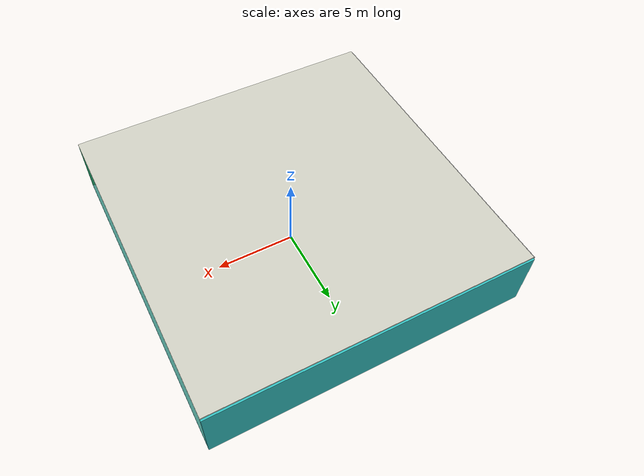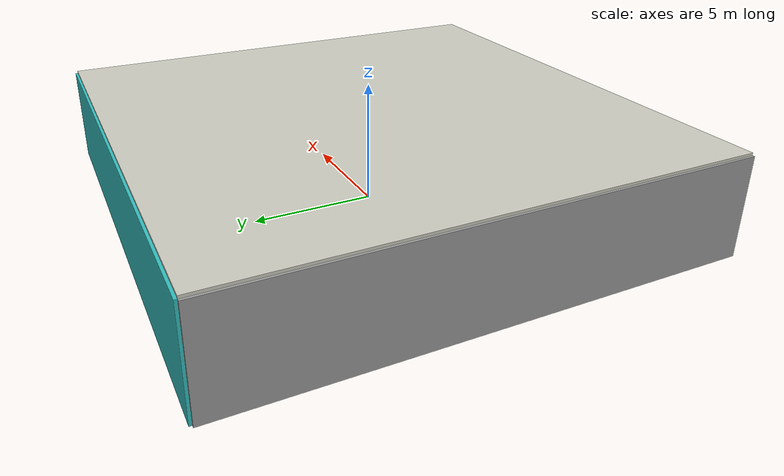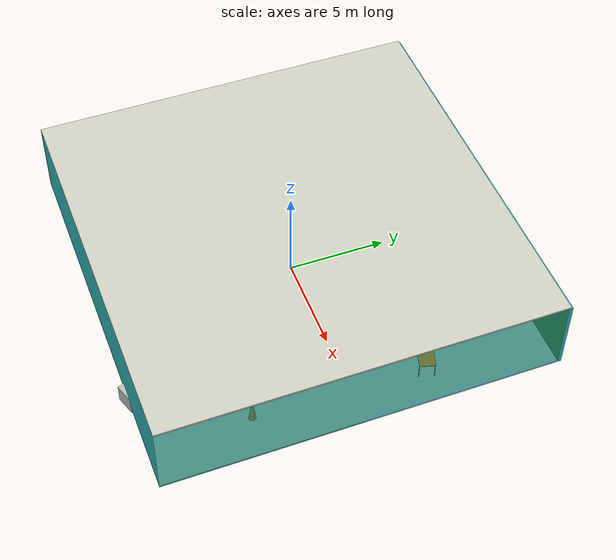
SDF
<sdf version="1.4">
 <world name="default">
  <physics type="ode">
   <max_step_size>0.001</max_step_size>
   <real_time_factor>1</real_time_factor>
   <real_time_update_rate>1000</real_time_update_rate>
   <gravity>0 0 -9.8</gravity>
  </physics>
  <scene><ambient>0.4 0.4 0.4 1</ambient><background>0.7 0.7 0.7 1</background><shadows>1</shadows></scene>
  <model name="Surrounding">
   <static>1</static>
   <link name="Ceiling">
    <collision name="Ceiling_Collision"><geometry><box><size>20 20 0.1</size></box></geometry></collision>
    <visual name="Ceiling_Visual">
     <geometry><box><size>20 20 0.1</size></box></geometry>
     <material>
      <script><uri>file://media/materials/scripts/gazebo.material</uri><name>Gazebo/PaintedWall</name></script>
     </material>
    </visual>
    <pose>0 0 4.05 0 0 0</pose>
   </link>
   <link name="Wall_South">
    <collision name="Wall_South_Collision">
     <geometry><box><size>20 0 4</size></box></geometry>
     <pose>0 0 2 0 -0 0</pose>
    </collision>
    <visual name="Wall_South_Visual">
     <pose>0 0 2 0 -0 0</pose>
     <geometry><box><size>20 0 4</size></box></geometry>
     <material>
      <script><uri>file://media/materials/scripts/gazebo.material</uri><name>Gazebo/TurquoiseGlow</name></script>
     </material>
    </visual>
    <velocity_decay><linear>0</linear><angular>0</angular></velocity_decay>
    <pose>0 -10 0 0 -0 0</pose>
   </link>
   <link name="Wall_East">
    <collision name="Wall_21_Collision">
     <geometry><box><size>20 0 4</size></box></geometry>
     <pose>0 0 2 0 -0 0</pose>
    </collision>
    <visual name="Wall_21_Visual">
     <pose>0 0 2 0 -0 0</pose>
     <geometry><box><size>20 0 4</size></box></geometry>
     <material>
      <script><uri>file://media/materials/scripts/gazebo.material</uri><name>Gazebo/GreenTransparent</name></script>
     </material>
    </visual>
    <velocity_decay><linear>0</linear><angular>0</angular></velocity_decay>
    <pose>10 0 0 0 -0 1.5708</pose>
   </link>
   <link name="Wall_North">
    <collision name="Wall_22_Collision">
     <geometry><box><size>20 0.2 4</size></box></geometry>
     <pose>0 0 2 0 -0 0</pose>
    </collision>
    <visual name="Wall_22_Visual">
     <pose>0 0 2 0 -0 0</pose>
     <geometry><box><size>20 0.2 4</size></box></geometry>
     <material>
      <script>
       <uri>file://media/materials/scripts/gazebo.material</uri>
       <name>Gazebo/TurquoiseGlowOutline</name>
      </script>
     </material>
    </visual>
    <velocity_decay><linear>0</linear><angular>0</angular></velocity_decay>
    <pose>0 10 0 0 -0 0</pose>
   </link>
   <link name="Wall_West">
    <collision name="Wall_23_Collision">
     <geometry><box><size>20 0.2 4</size></box></geometry>
     <pose>0 0 2 0 -0 0</pose>
    </collision>
    <visual name="Wall_23_Visual">
     <pose>0 0 2 0 -0 0</pose>
     <geometry><box><size>20 0.2 4</size></box></geometry>
     <material>
      <script><uri>file://media/materials/scripts/gazebo.material</uri><name>Gazebo/GreyGradientSky</name></script>
     </material>
    </visual>
    <velocity_decay><linear>0</linear><angular>0</angular></velocity_decay>
    <pose>-10 0 0 0 0 -1.5708</pose>
   </link>
   <link name="Ground_link">
    <collision name="collision">
     <pose>0 0 .05 0 -0 0</pose>
     <geometry><box><size>20 20 0.1</size></box></geometry>
    </collision>
    <visual name="visual">
     <pose>0 0 .05 0 -0 0</pose>
     <geometry><box><size>20 20 0.1</size></box></geometry>
     <material>
      <script><uri>file://media/materials/scripts/gazebo.material</uri><name>Gazebo/SkyBlue</name></script>
     </material>
    </visual>
   </link>
   <static>1</static>
  </model>
  <spherical_coordinates>
   <surface_model>EARTH_WGS84</surface_model>
   <latitude_deg>0</latitude_deg>
   <longitude_deg>0</longitude_deg>
   <elevation>0</elevation>
   <heading_deg>0</heading_deg>
  </spherical_coordinates>
  <light name="lightball_0" type="diffuse">
   <diffuse>0.8 0.8 0.8 1</diffuse>
   <specular>0.2 0.2 0.2 1</specular>
   <attenuation>
    <range>100</range>
    <constant>0.7</constant>
    <linear>0.01</linear>
    <quadratic>0.001</quadratic>
   </attenuation>
   <direction>-0.5 0.1 -0.9</direction>
   <pose>-3.21922695216 -3.38068306053 1.20532772273 0 0 0</pose>
  </light>
  <light name="lightball_1" type="diffuse">
   <diffuse>0.8 0.8 0.8 1</diffuse>
   <specular>0.2 0.2 0.2 1</specular>
   <attenuation>
    <range>100</range>
    <constant>0.7</constant>
    <linear>0.01</linear>
    <quadratic>0.001</quadratic>
   </attenuation>
   <direction>-0.5 0.1 -0.9</direction>
   <pose>3.67929123836 -2.35520717466 3.76682098048 0 0 0</pose>
  </light>
  <light name="lightball_2" type="diffuse">
   <diffuse>0.8 0.8 0.8 1</diffuse>
   <specular>0.2 0.2 0.2 1</specular>
   <attenuation>
    <range>100</range>
    <constant>0.7</constant>
    <linear>0.01</linear>
    <quadratic>0.001</quadratic>
   </attenuation>
   <direction>-0.5 0.1 -0.9</direction>
   <pose>7.59942302169 -0.74634365947 1.28814821156 0 0 0</pose>
  </light>
  <light name="lightball_3" type="diffuse">
   <diffuse>0.8 0.8 0.8 1</diffuse>
   <specular>0.2 0.2 0.2 1</specular>
   <attenuation>
    <range>100</range>
    <constant>0.7</constant>
    <linear>0.01</linear>
    <quadratic>0.001</quadratic>
   </attenuation>
   <direction>-0.5 0.1 -0.9</direction>
   <pose>4.0640262408 -0.836866162956 1.98774905948 0 0 0</pose>
  </light>
  <light name="lightball_4" type="diffuse">
   <diffuse>0.8 0.8 0.8 1</diffuse>
   <specular>0.2 0.2 0.2 1</specular>
   <attenuation>
    <range>100</range>
    <constant>0.7</constant>
    <linear>0.01</linear>
    <quadratic>0.001</quadratic>
   </attenuation>
   <direction>-0.5 0.1 -0.9</direction>
   <pose>7.06614851954 -4.61097353879 2.83371871078 0 0 0</pose>
  </light>
  <light name="lightball_5" type="diffuse">
   <diffuse>0.8 0.8 0.8 1</diffuse>
   <specular>0.2 0.2 0.2 1</specular>
   <attenuation>
    <range>100</range>
    <constant>0.7</constant>
    <linear>0.01</linear>
    <quadratic>0.001</quadratic>
   </attenuation>
   <direction>-0.5 0.1 -0.9</direction>
   <pose>-4.59285752816 3.84065759432 2.61757863745 0 0 0</pose>
  </light>
  <light name="lightball_6" type="diffuse">
   <diffuse>0.8 0.8 0.8 1</diffuse>
   <specular>0.2 0.2 0.2 1</specular>
   <attenuation>
    <range>100</range>
    <constant>0.7</constant>
    <linear>0.01</linear>
    <quadratic>0.001</quadratic>
   </attenuation>
   <direction>-0.5 0.1 -0.9</direction>
   <pose>7.88275469197 1.03905813829 2.42833421169 0 0 0</pose>
  </light>
  <light name="lightball_7" type="diffuse">
   <diffuse>0.8 0.8 0.8 1</diffuse>
   <specular>0.2 0.2 0.2 1</specular>
   <attenuation>
    <range>100</range>
    <constant>0.7</constant>
    <linear>0.01</linear>
    <quadratic>0.001</quadratic>
   </attenuation>
   <direction>-0.5 0.1 -0.9</direction>
   <pose>-1.8584451953 6.72809112662 3.04926587467 0 0 0</pose>
  </light>
  <include><uri>model://cabinet</uri><pose>-7.56583763491 -7.92916027184 0 0 0 0.0212445479712</pose></include>
  <include><uri>model://cabinet</uri><pose>-8.21149736166 1.21838846622 0 0 0 2.55080134009</pose></include>
  <include>
   <uri>model://construction_cone</uri>
   <pose>-4.84607492447 -7.25291472839 0 0 0 2.9489982659</pose>
  </include>
  <include>
   <uri>model://robocup_3Dsim_goal</uri>
   <pose>-1.49792587587 2.18596198782 0 0 0 3.05549997426</pose>
  </include>
  <include><uri>model://cabinet</uri><pose>1.53472256749 6.70765009617 0 0 0 0.199284883542</pose></include>
  <include>
   <uri>model://textured_shapes</uri>
   <pose>4.23338178689 -8.26328722409 0 0 0 0.338636546433</pose>
  </include>
  <include>
   <uri>model://robocup_3Dsim_goal</uri>
   <pose>3.99288359136 -3.98540521404 0 0 0 0.144025757753</pose>
  </include>
  <include>
   <uri>model://construction_cone</uri>
   <pose>7.99259742448 -4.89319669763 0 0 0 2.36315226509</pose>
  </include>
  <include><uri>model://table</uri><pose>7.99831026023 3.80990279192 0 0 0 2.8668776171</pose></include>
 </world>
</sdf>

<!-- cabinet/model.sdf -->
<sdf version="1.5">
  <model name="cabinet">
    <static>true</static>
    <link name="cabinet_bottom_plate">
      <inertial>
        <pose>0 0 -1 0 0 0</pose>
        <inertia>
          <ixx>2.050000</ixx>
          <ixy>0</ixy>
          <ixz>0</ixz>
          <iyy>2.050000</iyy>
          <iyz>0</iyz>
          <izz>2.050000</izz>
        </inertia>
        <mass>25.000000</mass>
      </inertial>
      <collision name="cabinet_bottom_plate_geom">
        <pose>0 0 0.010000 0 0 0</pose>
        <geometry>
          <box>
            <size>0.450000 0.450000 0.020000</size>
          </box>
        </geometry>
      </collision>
      <visual name="cabinet_bottom_plate_geom_visual">
        <pose>0 0 0.010000 0 0 0</pose>
        <geometry>
          <box>
            <size>0.450000 0.450000 0.020000</size>
          </box>
        </geometry>
        <material>
          <script>
            <uri>model://media/materials/scripts/gazebo.material</uri>
            <name>Gazebo/Wood</name>
          </script>
        </material>
      </visual>
      <collision name="cabinet_bottom_plate_geom_cabinet_back_plate">
        <pose>0.235000 0 0.510000 0 0 0</pose>
        <geometry>
          <box>
            <size>0.020000 0.450000 1.020000</size>
          </box>
        </geometry>
      </collision>
      <visual name="cabinet_bottom_plate_geom_cabinet_back_plate_visual">
        <pose>0.235000 0 0.510000 0 0 0</pose>
        <geometry>
          <box>
            <size>0.020000 0.450000 1.020000</size>
          </box>
        </geometry>
        <material>
          <script>
            <uri>model://media/materials/scripts/gazebo.material</uri>
            <name>Gazebo/Wood</name>
          </script>
        </material>
      </visual>
      <collision name="cabinet_bottom_plate_geom_cabinet_left_plate">
        <pose>0 0.235000 0.510000 0 0 0</pose>
        <geometry>
          <box>
            <size>0.450000 0.020000 1.020000</size>
          </box>
        </geometry>
      </collision>
      <visual name="cabinet_bottom_plate_geom_cabinet_left_plate_visual">
        <pose>0 0.235000 0.510000 0 0 0</pose>
        <geometry>
          <box>
            <size>0.450000 0.020000 1.020000</size>
          </box>
        </geometry>
        <material>
          <script>
            <uri>model://media/materials/scripts/gazebo.material</uri>
            <name>Gazebo/Wood</name>
          </script>
        </material>
      </visual>
      <collision name="cabinet_bottom_plate_geom_cabinet_middle_plate">
        <pose>0 0 0.510000 0 0 0</pose>
        <geometry>
          <box>
            <size>0.450000 0.450000 0.020000</size>
          </box>
        </geometry>
      </collision>
      <visual name="cabinet_bottom_plate_geom_cabinet_middle_plate_visual">
        <pose>0 0 0.510000 0 0 0</pose>
        <geometry>
          <box>
            <size>0.450000 0.450000 0.020000</size>
          </box>
        </geometry>
        <material>
          <script>
            <uri>model://media/materials/scripts/gazebo.material</uri>
            <name>Gazebo/Wood</name>
          </script>
        </material>
      </visual>
      <collision name="cabinet_bottom_plate_geom_cabinet_right_plate">
        <pose>0 -0.235000 0.510000 0 0 0</pose>
        <geometry>
          <box>
            <size>0.450000 0.020000 1.020000</size>
          </box>
        </geometry>
      </collision>
      <visual name="cabinet_bottom_plate_geom_cabinet_right_plate_visual">
        <pose>0 -0.235000 0.510000 0 0 0</pose>
        <geometry>
          <box>
            <size>0.450000 0.020000 1.020000</size>
          </box>
        </geometry>
        <material>
          <script>
            <uri>model://media/materials/scripts/gazebo.material</uri>
            <name>Gazebo/Wood</name>
          </script>
        </material>
      </visual>
      <collision name="cabinet_bottom_plate_geom_cabinet_top_plate">
        <pose>0 0 1.010000 0 0 0</pose>
        <geometry>
          <box>
            <size>0.450000 0.450000 0.020000</size>
          </box>
        </geometry>
      </collision>
      <visual name="cabinet_bottom_plate_geom_cabinet_top_plate_visual">
        <pose>0 0 1.010000 0 0 0</pose>
        <geometry>
          <box>
            <size>0.450000 0.450000 0.020000</size>
          </box>
        </geometry>
        <material>
          <script>
            <uri>model://media/materials/scripts/gazebo.material</uri>
            <name>Gazebo/Wood</name>
          </script>
        </material>
      </visual>
    </link>
  </model>
</sdf>

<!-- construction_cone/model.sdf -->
<sdf version="1.5">
  <model name="Construction Cone">
    <link name="link">
      <collision name="collision">
        <geometry>
          <mesh>
            <scale>10 10 10</scale>
            <uri>file://isr-testbed/construction_cone/meshes/construction_cone.dae</uri>
          </mesh>
        </geometry>
      </collision>
      <visual name="visual">
        <geometry>
          <mesh>
            <scale>10 10 10</scale>
            <uri>file://isr-testbed/construction_cone/meshes/construction_cone.dae</uri>
          </mesh>
        </geometry>
      </visual>
    </link>
  </model>
</sdf>

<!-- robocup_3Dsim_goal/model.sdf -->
<sdf version="1.5">
  <model name="robocup_3d_goal">
    <static>true</static>
    <link name="left_post">
      <pose>0 1.05 0.45 0 0 0</pose>
      <collision name="collision">
        <geometry>
          <cylinder>
            <radius>0.05</radius>
            <length>0.9</length>
          </cylinder>
        </geometry>
      </collision>
      <visual name="visual">
        <geometry>
          <cylinder>
            <radius>0.05</radius>
            <length>0.9</length>
          </cylinder>
        </geometry>
        <material>
          <script>
            <uri>file://media/materials/scripts/gazebo.material</uri>
            <name>Gazebo/ZincYellow</name>
          </script>
        </material>
      </visual>
    </link>
    <link name="left_support_horiz_lower">
      <pose>0.30 1.05 0.01 0 0 0</pose>
      <collision name="collision">
        <geometry>
          <box>
            <size>0.50 0.02 0.02</size>
          </box>
        </geometry>
      </collision>
      <visual name="visual">
        <geometry>
          <box>
            <size>0.50 0.02 0.02</size>
          </box>
        </geometry>
        <material>
          <script>
            <uri>file://media/materials/scripts/gazebo.material</uri>
            <name>Gazebo/White</name>
          </script>
        </material>
      </visual>
    </link>
    <link name="left_support_horiz_upper">
      <pose>0.30 1.05 0.79 0 0 0</pose>
      <collision name="collision">
        <geometry>
          <box>
            <size>0.50 0.02 0.02</size>
          </box>
        </geometry>
      </collision>
      <visual name="visual">
        <geometry>
          <box>
            <size>0.50 0.02 0.02</size>
          </box>
        </geometry>
        <material>
          <script>
            <uri>file://media/materials/scripts/gazebo.material</uri>
            <name>Gazebo/White</name>
          </script>
        </material>
      </visual>
    </link>
    <link name="left_support_vertical">
      <pose>0.56 1.05 0.4 0 1.5708 0</pose>
      <collision name="collision">
        <geometry>
          <box>
            <size>0.80 0.02 0.02</size>
          </box>
        </geometry>
      </collision>
      <visual name="visual">
        <geometry>
          <box>
            <size>0.80 0.02 0.02</size>
          </box>
        </geometry>
        <material>
          <script>
            <uri>file://media/materials/scripts/gazebo.material</uri>
            <name>Gazebo/White</name>
          </script>
        </material>
      </visual>
    </link>
    <link name="right_support_horiz_lower">
      <pose>0.30 -1.05 0.01 0 0 0</pose>
      <collision name="collision">
        <geometry>
          <box>
            <size>0.50 0.02 0.02</size>
          </box>
        </geometry>
      </collision>
      <visual name="visual">
        <geometry>
          <box>
            <size>0.50 0.02 0.02</size>
          </box>
        </geometry>
        <material>
          <script>
            <uri>file://media/materials/scripts/gazebo.material</uri>
            <name>Gazebo/White</name>
          </script>
        </material>
      </visual>
    </link>
    <link name="right_support_horiz_upper">
      <pose>0.30 -1.05 0.79 0 0 0</pose>
      <collision name="collision">
        <geometry>
          <box>
            <size>0.50 0.02 0.02</size>
          </box>
        </geometry>
      </collision>
      <visual name="visual">
        <geometry>
          <box>
            <size>0.50 0.02 0.02</size>
          </box>
        </geometry>
        <material>
          <script>
            <uri>file://media/materials/scripts/gazebo.material</uri>
            <name>Gazebo/White</name>
          </script>
        </material>
      </visual>
    </link>
    <link name="right_support_vertical">
      <pose>0.56 -1.05 0.4 0 1.5708 0</pose>
      <collision name="collision">
        <geometry>
          <box>
            <size>0.80 0.02 0.02</size>
          </box>
        </geometry>
      </collision>
      <visual name="visual">
        <geometry>
          <box>
            <size>0.80 0.02 0.02</size>
          </box>
        </geometry>
        <material>
          <script>
            <uri>file://media/materials/scripts/gazebo.material</uri>
            <name>Gazebo/White</name>
          </script>
        </material>
      </visual>
    </link>
    <link name="center_support_horiz_lower">
      <pose>0.56 0 0.01 0 1.5708 0</pose>
      <collision name="collision">
        <geometry>
          <box>
            <size>0.02 2.08 0.02</size>
          </box>
        </geometry>
      </collision>
      <visual name="visual">
        <geometry>
          <box>
            <size>0.02 2.08 0.02</size>
          </box>
        </geometry>
        <material>
          <script>
            <uri>file://media/materials/scripts/gazebo.material</uri>
            <name>Gazebo/White</name>
          </script>
        </material>
      </visual>
    </link>
    <link name="center_support_horiz_upper">
      <pose>0.56 0 0.79 0 1.5708 0</pose>
      <collision name="collision">
        <geometry>
          <box>
            <size>0.02 2.08 0.02</size>
          </box>
        </geometry>
      </collision>
      <visual name="visual">
        <geometry>
          <box>
            <size>0.02 2.08 0.02</size>
          </box>
        </geometry>
        <material>
          <script>
            <uri>file://media/materials/scripts/gazebo.material</uri>
            <name>Gazebo/White</name>
          </script>
        </material>
      </visual>
    </link>
    <link name="right_post">
      <pose>0 -1.05 0.45 0 0 0</pose>
      <collision name="collision">
        <geometry>
          <cylinder>
            <radius>0.05</radius>
            <length>0.9</length>
          </cylinder>
        </geometry>
      </collision>
      <visual name="visual">
        <geometry>
          <cylinder>
            <radius>0.05</radius>
            <length>0.9</length>
          </cylinder>
        </geometry>
        <material>
          <script>
            <uri>file://media/materials/scripts/gazebo.material</uri>
            <name>Gazebo/ZincYellow</name>
          </script>
        </material>
      </visual>
    </link>
    <link name="crossbar">
      <pose>0 0 0.85 1.57 1.57 0</pose>
      <collision name="collision">
        <geometry>
          <cylinder>
            <radius>0.05</radius>
            <length>2.0</length>
          </cylinder>
        </geometry>
      </collision>
      <visual name="visual">
        <geometry>
          <cylinder>
            <radius>0.05</radius>
            <length>2.0</length>
          </cylinder>
        </geometry>
        <material>
          <script>
            <uri>file://media/materials/scripts/gazebo.material</uri>
            <name>Gazebo/ZincYellow</name>
          </script>
        </material>
      </visual>
    </link>
    <link name="center_net">
      <pose>0.56 0 0.40 0 0 0</pose>
      <collision name="collision">
        <geometry>
          <box>
            <size>0.01 2.1 0.80</size>
          </box>
        </geometry>
      </collision>
      <visual name="visual">
        <geometry>
          <box>
            <size>0.01 2.1 0.80</size>
          </box>
        </geometry>
        <material>
          <script>
            <uri>model://../model_source/models/robocup09_spl_field/materials/scripts/</uri>
            <uri>model://../model_source/models/robocup09_spl_field/materials/textures/</uri>
            <name>RoboCup/Net</name>
          </script>
        </material>
      </visual>
    </link>
    <link name="left_net">
      <pose>0.30 1.05 0.40 0 0 0</pose>
      <collision name="collision">
        <geometry>
          <box>
            <size>0.50 0.01 0.76</size>
          </box>
        </geometry>
      </collision>
      <visual name="visual">
        <geometry>
          <box>
            <size>0.50 0.01 0.76</size>
          </box>
        </geometry>
        <material>
          <script>
            <uri>model://../model_source/models/robocup09_spl_field/materials/scripts/</uri>
            <uri>model://../model_source/models/robocup09_spl_field/materials/textures/</uri>
            <name>RoboCup/Net</name>
          </script>
        </material>
      </visual>
    </link>
    <link name="right_net">
      <pose>0.30 -1.05 0.40 0 0 0</pose>
      <collision name="collision">
        <geometry>
          <box>
            <size>0.50 0.01 0.76</size>
          </box>
        </geometry>
      </collision>
      <visual name="visual">
        <geometry>
          <box>
            <size>0.50 0.01 0.76</size>
          </box>
        </geometry>
        <material>
          <script>
            <uri>model://../model_source/models/robocup09_spl_field/materials/scripts/</uri>
            <uri>model://../model_source/models/robocup09_spl_field/materials/textures/</uri>
            <name>RoboCup/Net</name>
          </script>
        </material>
      </visual>
    </link>
  </model>
</sdf>

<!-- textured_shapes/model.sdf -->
<sdf version="1.6">
  <model name="textured_shapes">
    <pose>0 0 0.5 0 0 0</pose>
    <link name="box">
      <pose>0 -1.5 0 0 0 0</pose>
      <collision name="collision">
        <geometry>
          <box>
            <size>1 1 1</size>
          </box>
        </geometry>
      </collision>
      <visual name="visual">
        <geometry>
          <box>
            <size>1 1 1</size>
          </box>
        </geometry>
        <material>
          <script>
            <uri>model://../model_source/models/textured_shapes/materials/scripts</uri>
            <uri>model://../model_source/models/textured_shapes/materials/textures</uri>
            <name>TexturedShape/Squares</name>
          </script>
        </material>
      </visual>
    </link>
    <link name="sphere">
      <collision name="collision">
        <geometry>
          <sphere>
            <radius>0.5</radius>
          </sphere>
        </geometry>
      </collision>
      <visual name="visual">
        <geometry>
          <sphere>
            <radius>0.5</radius>
          </sphere>
        </geometry>
        <material>
          <script>
            <uri>model://../model_source/models/textured_shapes/materials/scripts</uri>
            <uri>model://../model_source/models/textured_shapes/materials/textures</uri>
            <name>TexturedShape/Squares</name>
          </script>
        </material>
      </visual>
    </link>
    <link name="cylinder">
      <pose>0 1.5 0 0 0 0</pose>
      <collision name="collision">
        <geometry>
          <cylinder>
            <radius>0.5</radius>
            <length>1</length>
          </cylinder>
        </geometry>
      </collision>
      <visual name="visual">
        <geometry>
          <cylinder>
            <radius>0.5</radius>
            <length>1</length>
          </cylinder>
        </geometry>
        <material>
          <script>
            <uri>model://../model_source/models/textured_shapes/materials/scripts</uri>
            <uri>model://../model_source/models/textured_shapes/materials/textures</uri>
            <name>TexturedShape/Squares</name>
          </script>
        </material>
      </visual>
    </link>
  </model>
</sdf>

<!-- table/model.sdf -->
<sdf version="1.5">
  <model name="table">
    <static>true</static>
    <link name="link">
      <collision name="surface">
        <pose>0 0 1.0 0 0 0</pose>
        <geometry>
          <box>
            <size>1.5 0.8 0.03</size>
          </box>
        </geometry>
        <surface>
          <friction>
            <ode>
              <mu>0.6</mu>
              <mu2>0.6</mu2>
            </ode>
          </friction>
        </surface>
      </collision>
      <visual name="visual1">
        <pose>0 0 1.0 0 0 0</pose>
        <geometry>
          <box>
            <size>1.5 0.8 0.03</size>
          </box>
        </geometry>
        <material>
          <script>
            <uri>model://media/materials/scripts/gazebo.material</uri>
            <name>Gazebo/Wood</name>
          </script>
        </material>
      </visual>
      <collision name="front_left_leg">
        <pose>0.68 0.38 0.5 0 0 0</pose>
        <geometry>
          <cylinder>
            <radius>0.02</radius>
            <length>1.0</length>
          </cylinder>
        </geometry>
      </collision>
      <visual name="front_left_leg">
        <pose>0.68 0.38 0.5 0 0 0</pose>
        <geometry>
          <cylinder>
            <radius>0.02</radius>
            <length>1.0</length>
          </cylinder>
        </geometry>
        <material>
          <script>
            <uri>model://media/materials/scripts/gazebo.material</uri>
            <name>Gazebo/Grey</name>
          </script>
        </material>
      </visual>
      <collision name="front_right_leg">
        <pose>0.68 -0.38 0.5 0 0 0</pose>
        <geometry>
          <cylinder>
            <radius>0.02</radius>
            <length>1.0</length>
          </cylinder>
        </geometry>
      </collision>
      <visual name="front_right_leg">
        <pose>0.68 -0.38 0.5 0 0 0</pose>
        <geometry>
          <cylinder>
            <radius>0.02</radius>
            <length>1.0</length>
          </cylinder>
        </geometry>
        <material>
          <script>
            <uri>model://media/materials/scripts/gazebo.material</uri>
            <name>Gazebo/Grey</name>
          </script>
        </material>
      </visual>
      <collision name="back_right_leg">
        <pose>-0.68 -0.38 0.5 0 0 0</pose>
        <geometry>
          <cylinder>
            <radius>0.02</radius>
            <length>1.0</length>
          </cylinder>
        </geometry>
      </collision>
      <visual name="back_right_leg">
        <pose>-0.68 -0.38 0.5 0 0 0</pose>
        <geometry>
          <cylinder>
            <radius>0.02</radius>
            <length>1.0</length>
          </cylinder>
        </geometry>
        <material>
          <script>
            <uri>model://media/materials/scripts/gazebo.material</uri>
            <name>Gazebo/Grey</name>
          </script>
        </material>
      </visual>
      <collision name="back_left_leg">
        <pose>-0.68 0.38 0.5 0 0 0</pose>
        <geometry>
          <cylinder>
            <radius>0.02</radius>
            <length>1.0</length>
          </cylinder>
        </geometry>
      </collision>
      <visual name="back_left_leg">
        <pose>-0.68 0.38 0.5 0 0 0</pose>
        <geometry>
          <cylinder>
            <radius>0.02</radius>
            <length>1.0</length>
          </cylinder>
        </geometry>
        <material>
          <script>
            <uri>model://media/materials/scripts/gazebo.material</uri>
            <name>Gazebo/Grey</name>
          </script>
        </material>
      </visual>
    </link>
  </model>
</sdf>
